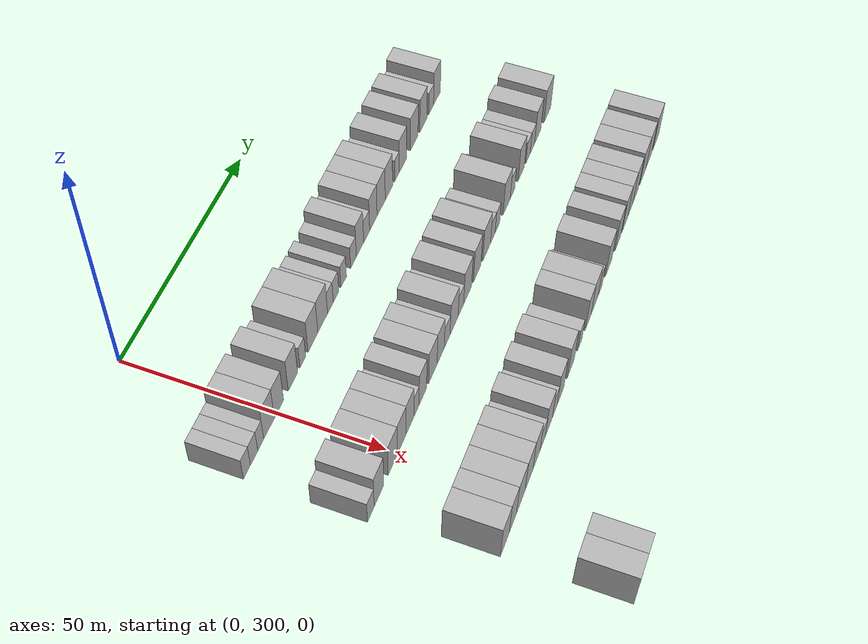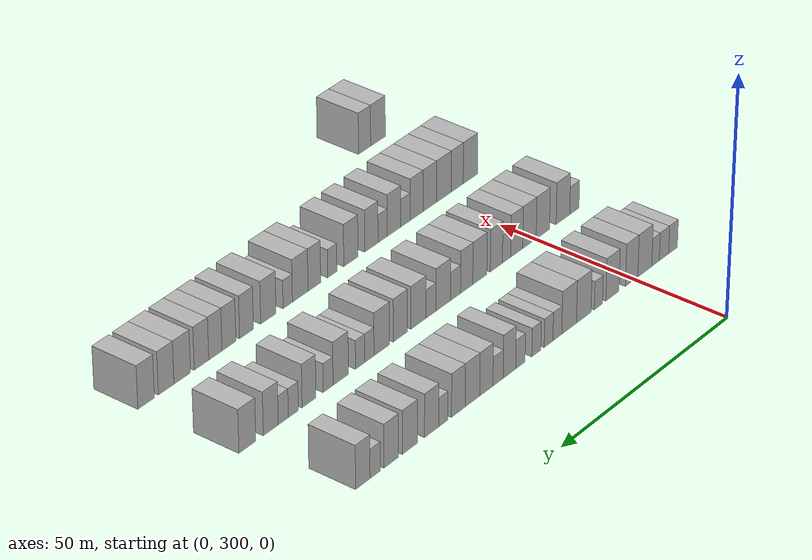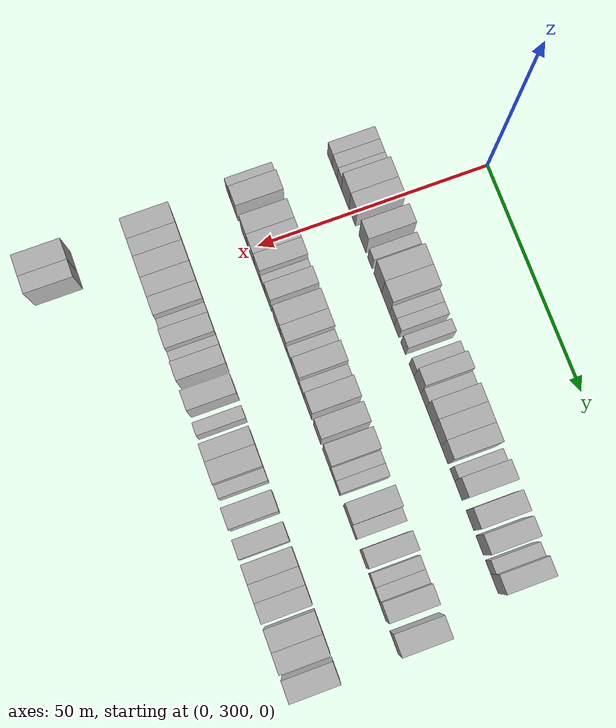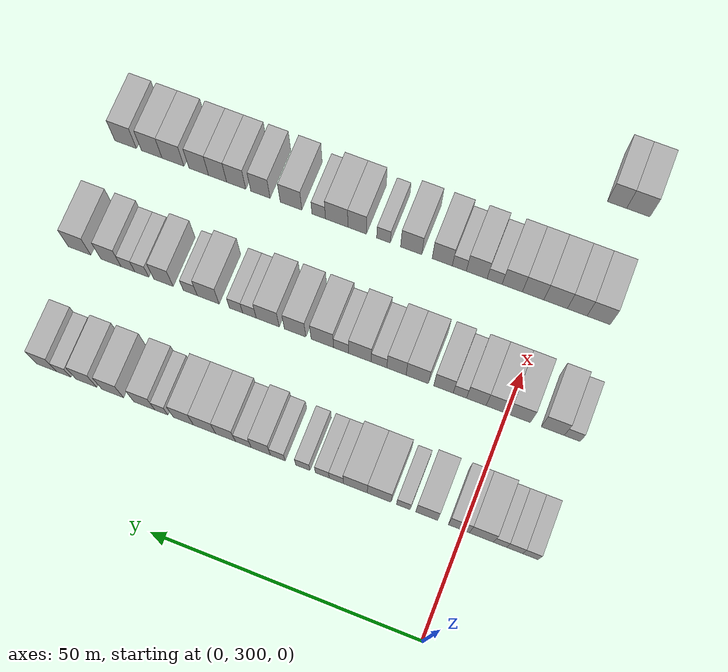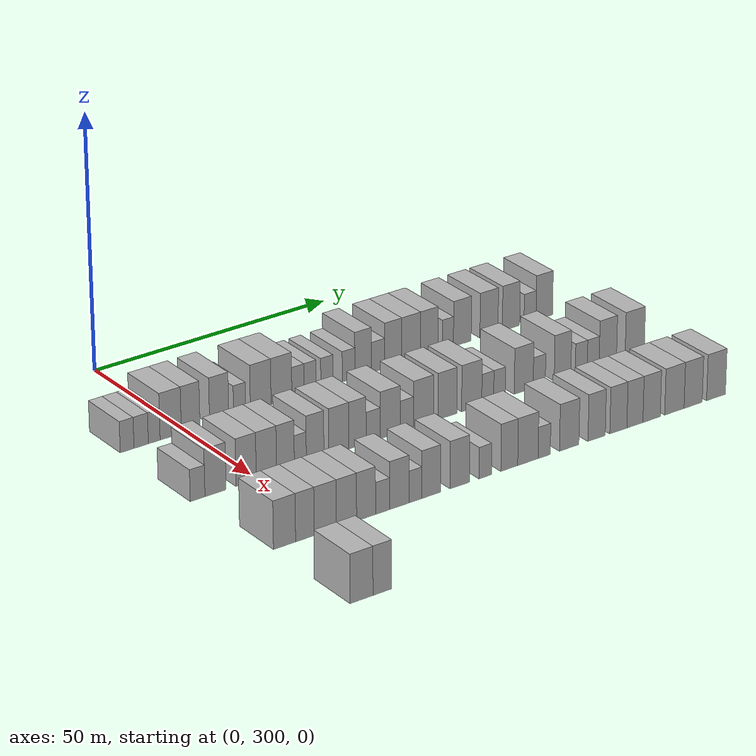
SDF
<sdf version="1.6">
 <world name="default">
  <model name="building_176">
   <static>1</static>
   <pose>25.0000 287.8231 0 0.000000 0.000000 0.000000</pose>
   <link name="link">
    <pose>0 0 3.00 0 0 0</pose>
    <collision name="collision"><geometry><box><size>10.0000 2.7982 6.0000</size></box></geometry></collision>
    <visual name="visual">
     <cast_shadows>0</cast_shadows>
     <geometry><box><size>10.0000 2.7982 6.0000</size></box></geometry>
     <material>
      <script>
       <uri>model://HANNAS_wall/materials/scripts</uri>
       <uri>model://HANNAS_wall/materials/textures</uri>
       <name>vrc/HANNAS_wall</name>
      </script>
     </material>
    </visual>
   </link>
  </model>
  <model name="building_177">
   <static>1</static>
   <pose>25.0000 290.6865 0 0.000000 0.000000 0.000000</pose>
   <link name="link">
    <pose>0 0 3.00 0 0 0</pose>
    <collision name="collision"><geometry><box><size>10.0000 2.9284 6.0000</size></box></geometry></collision>
    <visual name="visual">
     <cast_shadows>0</cast_shadows>
     <geometry><box><size>10.0000 2.9284 6.0000</size></box></geometry>
     <material>
      <script>
       <uri>model://HANNAS_wall/materials/scripts</uri>
       <uri>model://HANNAS_wall/materials/textures</uri>
       <name>vrc/HANNAS_wall</name>
      </script>
     </material>
    </visual>
   </link>
  </model>
  <model name="building_178">
   <static>1</static>
   <pose>25.0000 293.3516 0 0.000000 0.000000 0.000000</pose>
   <link name="link">
    <pose>0 0 3.00 0 0 0</pose>
    <collision name="collision"><geometry><box><size>10.0000 2.4019 6.0000</size></box></geometry></collision>
    <visual name="visual">
     <cast_shadows>0</cast_shadows>
     <geometry><box><size>10.0000 2.4019 6.0000</size></box></geometry>
     <material>
      <script>
       <uri>model://HANNAS_wall/materials/scripts</uri>
       <uri>model://HANNAS_wall/materials/textures</uri>
       <name>vrc/HANNAS_wall</name>
      </script>
     </material>
    </visual>
   </link>
  </model>
  <model name="building_179">
   <static>1</static>
   <pose>25.0000 296.7458 0 0.000000 0.000000 0.000000</pose>
   <link name="link">
    <pose>0 0 4.50 0 0 0</pose>
    <collision name="collision"><geometry><box><size>10.0000 4.3865 9.0000</size></box></geometry></collision>
    <visual name="visual">
     <cast_shadows>0</cast_shadows>
     <geometry><box><size>10.0000 4.3865 9.0000</size></box></geometry>
     <material>
      <script>
       <uri>model://HANNAS_wall/materials/scripts</uri>
       <uri>model://HANNAS_wall/materials/textures</uri>
       <name>vrc/HANNAS_wall</name>
      </script>
     </material>
    </visual>
   </link>
  </model>
  <model name="building_180">
   <static>1</static>
   <pose>25.0000 300.8703 0 0.000000 0.000000 0.000000</pose>
   <link name="link">
    <pose>0 0 4.50 0 0 0</pose>
    <collision name="collision"><geometry><box><size>10.0000 3.8624 9.0000</size></box></geometry></collision>
    <visual name="visual">
     <cast_shadows>0</cast_shadows>
     <geometry><box><size>10.0000 3.8624 9.0000</size></box></geometry>
     <material>
      <script>
       <uri>model://HANNAS_wall/materials/scripts</uri>
       <uri>model://HANNAS_wall/materials/textures</uri>
       <name>vrc/HANNAS_wall</name>
      </script>
     </material>
    </visual>
   </link>
  </model>
  <model name="building_181">
   <static>1</static>
   <pose>25.0000 306.8148 0 0.000000 0.000000 0.000000</pose>
   <link name="link">
    <pose>0 0 4.50 0 0 0</pose>
    <collision name="collision"><geometry><box><size>10.0000 4.0267 9.0000</size></box></geometry></collision>
    <visual name="visual">
     <cast_shadows>0</cast_shadows>
     <geometry><box><size>10.0000 4.0267 9.0000</size></box></geometry>
     <material>
      <script>
       <uri>model://HANNAS_wall/materials/scripts</uri>
       <uri>model://HANNAS_wall/materials/textures</uri>
       <name>vrc/HANNAS_wall</name>
      </script>
     </material>
    </visual>
   </link>
  </model>
  <model name="building_182">
   <static>1</static>
   <pose>25.0000 311.0975 0 0.000000 0.000000 0.000000</pose>
   <link name="link">
    <pose>0 0 3.00 0 0 0</pose>
    <collision name="collision"><geometry><box><size>10.0000 2.5386 6.0000</size></box></geometry></collision>
    <visual name="visual">
     <cast_shadows>0</cast_shadows>
     <geometry><box><size>10.0000 2.5386 6.0000</size></box></geometry>
     <material>
      <script>
       <uri>model://HANNAS_wall/materials/scripts</uri>
       <uri>model://HANNAS_wall/materials/textures</uri>
       <name>vrc/HANNAS_wall</name>
      </script>
     </material>
    </visual>
   </link>
  </model>
  <model name="building_183">
   <static>1</static>
   <pose>25.0000 315.5703 0 0.000000 0.000000 0.000000</pose>
   <link name="link">
    <pose>0 0 4.50 0 0 0</pose>
    <collision name="collision"><geometry><box><size>10.0000 4.4071 9.0000</size></box></geometry></collision>
    <visual name="visual">
     <cast_shadows>0</cast_shadows>
     <geometry><box><size>10.0000 4.4071 9.0000</size></box></geometry>
     <material>
      <script>
       <uri>model://HANNAS_wall/materials/scripts</uri>
       <uri>model://HANNAS_wall/materials/textures</uri>
       <name>vrc/HANNAS_wall</name>
      </script>
     </material>
    </visual>
   </link>
  </model>
  <model name="building_184">
   <static>1</static>
   <pose>25.0000 319.9927 0 0.000000 0.000000 0.000000</pose>
   <link name="link">
    <pose>0 0 4.50 0 0 0</pose>
    <collision name="collision"><geometry><box><size>10.0000 4.4377 9.0000</size></box></geometry></collision>
    <visual name="visual">
     <cast_shadows>0</cast_shadows>
     <geometry><box><size>10.0000 4.4377 9.0000</size></box></geometry>
     <material>
      <script>
       <uri>model://HANNAS_wall/materials/scripts</uri>
       <uri>model://HANNAS_wall/materials/textures</uri>
       <name>vrc/HANNAS_wall</name>
      </script>
     </material>
    </visual>
   </link>
  </model>
  <model name="building_185">
   <static>1</static>
   <pose>25.0000 323.5327 0 0.000000 0.000000 0.000000</pose>
   <link name="link">
    <pose>0 0 3.00 0 0 0</pose>
    <collision name="collision"><geometry><box><size>10.0000 2.6423 6.0000</size></box></geometry></collision>
    <visual name="visual">
     <cast_shadows>0</cast_shadows>
     <geometry><box><size>10.0000 2.6423 6.0000</size></box></geometry>
     <material>
      <script>
       <uri>model://HANNAS_wall/materials/scripts</uri>
       <uri>model://HANNAS_wall/materials/textures</uri>
       <name>vrc/HANNAS_wall</name>
      </script>
     </material>
    </visual>
   </link>
  </model>
  <model name="building_186">
   <static>1</static>
   <pose>25.0000 326.1540 0 0.000000 0.000000 0.000000</pose>
   <link name="link">
    <pose>0 0 3.00 0 0 0</pose>
    <collision name="collision"><geometry><box><size>10.0000 2.6001 6.0000</size></box></geometry></collision>
    <visual name="visual">
     <cast_shadows>0</cast_shadows>
     <geometry><box><size>10.0000 2.6001 6.0000</size></box></geometry>
     <material>
      <script>
       <uri>model://HANNAS_wall/materials/scripts</uri>
       <uri>model://HANNAS_wall/materials/textures</uri>
       <name>vrc/HANNAS_wall</name>
      </script>
     </material>
    </visual>
   </link>
  </model>
  <model name="building_187">
   <static>1</static>
   <pose>25.0000 329.7825 0 0.000000 0.000000 0.000000</pose>
   <link name="link">
    <pose>0 0 3.00 0 0 0</pose>
    <collision name="collision"><geometry><box><size>10.0000 2.6569 6.0000</size></box></geometry></collision>
    <visual name="visual">
     <cast_shadows>0</cast_shadows>
     <geometry><box><size>10.0000 2.6569 6.0000</size></box></geometry>
     <material>
      <script>
       <uri>model://HANNAS_wall/materials/scripts</uri>
       <uri>model://HANNAS_wall/materials/textures</uri>
       <name>vrc/HANNAS_wall</name>
      </script>
     </material>
    </visual>
   </link>
  </model>
  <model name="building_188">
   <static>1</static>
   <pose>25.0000 334.4904 0 0.000000 0.000000 0.000000</pose>
   <link name="link">
    <pose>0 0 3.00 0 0 0</pose>
    <collision name="collision"><geometry><box><size>10.0000 2.7588 6.0000</size></box></geometry></collision>
    <visual name="visual">
     <cast_shadows>0</cast_shadows>
     <geometry><box><size>10.0000 2.7588 6.0000</size></box></geometry>
     <material>
      <script>
       <uri>model://HANNAS_wall/materials/scripts</uri>
       <uri>model://HANNAS_wall/materials/textures</uri>
       <name>vrc/HANNAS_wall</name>
      </script>
     </material>
    </visual>
   </link>
  </model>
  <model name="building_189">
   <static>1</static>
   <pose>25.0000 337.6771 0 0.000000 0.000000 0.000000</pose>
   <link name="link">
    <pose>0 0 4.50 0 0 0</pose>
    <collision name="collision"><geometry><box><size>10.0000 3.6146 9.0000</size></box></geometry></collision>
    <visual name="visual">
     <cast_shadows>0</cast_shadows>
     <geometry><box><size>10.0000 3.6146 9.0000</size></box></geometry>
     <material>
      <script>
       <uri>model://HANNAS_wall/materials/scripts</uri>
       <uri>model://HANNAS_wall/materials/textures</uri>
       <name>vrc/HANNAS_wall</name>
      </script>
     </material>
    </visual>
   </link>
  </model>
  <model name="building_190">
   <static>1</static>
   <pose>25.0000 340.9827 0 0.000000 0.000000 0.000000</pose>
   <link name="link">
    <pose>0 0 3.00 0 0 0</pose>
    <collision name="collision"><geometry><box><size>10.0000 2.9967 6.0000</size></box></geometry></collision>
    <visual name="visual">
     <cast_shadows>0</cast_shadows>
     <geometry><box><size>10.0000 2.9967 6.0000</size></box></geometry>
     <material>
      <script>
       <uri>model://HANNAS_wall/materials/scripts</uri>
       <uri>model://HANNAS_wall/materials/textures</uri>
       <name>vrc/HANNAS_wall</name>
      </script>
     </material>
    </visual>
   </link>
  </model>
  <model name="building_191">
   <static>1</static>
   <pose>25.0000 344.3663 0 0.000000 0.000000 0.000000</pose>
   <link name="link">
    <pose>0 0 4.50 0 0 0</pose>
    <collision name="collision"><geometry><box><size>10.0000 3.7704 9.0000</size></box></geometry></collision>
    <visual name="visual">
     <cast_shadows>0</cast_shadows>
     <geometry><box><size>10.0000 3.7704 9.0000</size></box></geometry>
     <material>
      <script>
       <uri>model://HANNAS_wall/materials/scripts</uri>
       <uri>model://HANNAS_wall/materials/textures</uri>
       <name>vrc/HANNAS_wall</name>
      </script>
     </material>
    </visual>
   </link>
  </model>
  <model name="building_192">
   <static>1</static>
   <pose>25.0000 348.3481 0 0.000000 0.000000 0.000000</pose>
   <link name="link">
    <pose>0 0 4.50 0 0 0</pose>
    <collision name="collision"><geometry><box><size>10.0000 4.1932 9.0000</size></box></geometry></collision>
    <visual name="visual">
     <cast_shadows>0</cast_shadows>
     <geometry><box><size>10.0000 4.1932 9.0000</size></box></geometry>
     <material>
      <script>
       <uri>model://HANNAS_wall/materials/scripts</uri>
       <uri>model://HANNAS_wall/materials/textures</uri>
       <name>vrc/HANNAS_wall</name>
      </script>
     </material>
    </visual>
   </link>
  </model>
  <model name="building_193">
   <static>1</static>
   <pose>25.0000 352.3891 0 0.000000 0.000000 0.000000</pose>
   <link name="link">
    <pose>0 0 4.50 0 0 0</pose>
    <collision name="collision"><geometry><box><size>10.0000 3.8887 9.0000</size></box></geometry></collision>
    <visual name="visual">
     <cast_shadows>0</cast_shadows>
     <geometry><box><size>10.0000 3.8887 9.0000</size></box></geometry>
     <material>
      <script>
       <uri>model://HANNAS_wall/materials/scripts</uri>
       <uri>model://HANNAS_wall/materials/textures</uri>
       <name>vrc/HANNAS_wall</name>
      </script>
     </material>
    </visual>
   </link>
  </model>
  <model name="building_194">
   <static>1</static>
   <pose>25.0000 356.5926 0 0.000000 0.000000 0.000000</pose>
   <link name="link">
    <pose>0 0 3.00 0 0 0</pose>
    <collision name="collision"><geometry><box><size>10.0000 2.5184 6.0000</size></box></geometry></collision>
    <visual name="visual">
     <cast_shadows>0</cast_shadows>
     <geometry><box><size>10.0000 2.5184 6.0000</size></box></geometry>
     <material>
      <script>
       <uri>model://HANNAS_wall/materials/scripts</uri>
       <uri>model://HANNAS_wall/materials/textures</uri>
       <name>vrc/HANNAS_wall</name>
      </script>
     </material>
    </visual>
   </link>
  </model>
  <model name="building_195">
   <static>1</static>
   <pose>25.0000 359.8625 0 0.000000 0.000000 0.000000</pose>
   <link name="link">
    <pose>0 0 4.50 0 0 0</pose>
    <collision name="collision"><geometry><box><size>10.0000 4.0215 9.0000</size></box></geometry></collision>
    <visual name="visual">
     <cast_shadows>0</cast_shadows>
     <geometry><box><size>10.0000 4.0215 9.0000</size></box></geometry>
     <material>
      <script>
       <uri>model://HANNAS_wall/materials/scripts</uri>
       <uri>model://HANNAS_wall/materials/textures</uri>
       <name>vrc/HANNAS_wall</name>
      </script>
     </material>
    </visual>
   </link>
  </model>
  <model name="building_196">
   <static>1</static>
   <pose>25.0000 365.9520 0 0.000000 0.000000 0.000000</pose>
   <link name="link">
    <pose>0 0 4.50 0 0 0</pose>
    <collision name="collision"><geometry><box><size>10.0000 4.1575 9.0000</size></box></geometry></collision>
    <visual name="visual">
     <cast_shadows>0</cast_shadows>
     <geometry><box><size>10.0000 4.1575 9.0000</size></box></geometry>
     <material>
      <script>
       <uri>model://HANNAS_wall/materials/scripts</uri>
       <uri>model://HANNAS_wall/materials/textures</uri>
       <name>vrc/HANNAS_wall</name>
      </script>
     </material>
    </visual>
   </link>
  </model>
  <model name="building_197">
   <static>1</static>
   <pose>25.0000 371.0320 0 0.000000 0.000000 0.000000</pose>
   <link name="link">
    <pose>0 0 4.50 0 0 0</pose>
    <collision name="collision"><geometry><box><size>10.0000 4.0025 9.0000</size></box></geometry></collision>
    <visual name="visual">
     <cast_shadows>0</cast_shadows>
     <geometry><box><size>10.0000 4.0025 9.0000</size></box></geometry>
     <material>
      <script>
       <uri>model://HANNAS_wall/materials/scripts</uri>
       <uri>model://HANNAS_wall/materials/textures</uri>
       <name>vrc/HANNAS_wall</name>
      </script>
     </material>
    </visual>
   </link>
  </model>
  <model name="building_198">
   <static>1</static>
   <pose>25.0000 375.4323 0 0.000000 0.000000 0.000000</pose>
   <link name="link">
    <pose>0 0 3.00 0 0 0</pose>
    <collision name="collision"><geometry><box><size>10.0000 2.7981 6.0000</size></box></geometry></collision>
    <visual name="visual">
     <cast_shadows>0</cast_shadows>
     <geometry><box><size>10.0000 2.7981 6.0000</size></box></geometry>
     <material>
      <script>
       <uri>model://HANNAS_wall/materials/scripts</uri>
       <uri>model://HANNAS_wall/materials/textures</uri>
       <name>vrc/HANNAS_wall</name>
      </script>
     </material>
    </visual>
   </link>
  </model>
  <model name="building_199">
   <static>1</static>
   <pose>25.0000 378.7716 0 0.000000 0.000000 0.000000</pose>
   <link name="link">
    <pose>0 0 4.50 0 0 0</pose>
    <collision name="collision"><geometry><box><size>10.0000 3.8805 9.0000</size></box></geometry></collision>
    <visual name="visual">
     <cast_shadows>0</cast_shadows>
     <geometry><box><size>10.0000 3.8805 9.0000</size></box></geometry>
     <material>
      <script>
       <uri>model://HANNAS_wall/materials/scripts</uri>
       <uri>model://HANNAS_wall/materials/textures</uri>
       <name>vrc/HANNAS_wall</name>
      </script>
     </material>
    </visual>
   </link>
  </model>
  <model name="building_373">
   <static>1</static>
   <pose>47.0000 287.8870 0 0.000000 0.000000 0.000000</pose>
   <link name="link">
    <pose>0 0 3.00 0 0 0</pose>
    <collision name="collision"><geometry><box><size>10.0000 2.9422 6.0000</size></box></geometry></collision>
    <visual name="visual">
     <cast_shadows>0</cast_shadows>
     <geometry><box><size>10.0000 2.9422 6.0000</size></box></geometry>
     <material>
      <script>
       <uri>model://HANNAS_wall/materials/scripts</uri>
       <uri>model://HANNAS_wall/materials/textures</uri>
       <name>vrc/HANNAS_wall</name>
      </script>
     </material>
    </visual>
   </link>
  </model>
  <model name="building_374">
   <static>1</static>
   <pose>47.0000 291.4940 0 0.000000 0.000000 0.000000</pose>
   <link name="link">
    <pose>0 0 4.50 0 0 0</pose>
    <collision name="collision"><geometry><box><size>10.0000 4.2719 9.0000</size></box></geometry></collision>
    <visual name="visual">
     <cast_shadows>0</cast_shadows>
     <geometry><box><size>10.0000 4.2719 9.0000</size></box></geometry>
     <material>
      <script>
       <uri>model://HANNAS_wall/materials/scripts</uri>
       <uri>model://HANNAS_wall/materials/textures</uri>
       <name>vrc/HANNAS_wall</name>
      </script>
     </material>
    </visual>
   </link>
  </model>
  <model name="building_375">
   <static>1</static>
   <pose>47.0000 297.6992 0 0.000000 0.000000 0.000000</pose>
   <link name="link">
    <pose>0 0 4.50 0 0 0</pose>
    <collision name="collision"><geometry><box><size>10.0000 4.1385 9.0000</size></box></geometry></collision>
    <visual name="visual">
     <cast_shadows>0</cast_shadows>
     <geometry><box><size>10.0000 4.1385 9.0000</size></box></geometry>
     <material>
      <script>
       <uri>model://HANNAS_wall/materials/scripts</uri>
       <uri>model://HANNAS_wall/materials/textures</uri>
       <name>vrc/HANNAS_wall</name>
      </script>
     </material>
    </visual>
   </link>
  </model>
  <model name="building_376">
   <static>1</static>
   <pose>47.0000 301.8519 0 0.000000 0.000000 0.000000</pose>
   <link name="link">
    <pose>0 0 4.50 0 0 0</pose>
    <collision name="collision"><geometry><box><size>10.0000 4.1668 9.0000</size></box></geometry></collision>
    <visual name="visual">
     <cast_shadows>0</cast_shadows>
     <geometry><box><size>10.0000 4.1668 9.0000</size></box></geometry>
     <material>
      <script>
       <uri>model://HANNAS_wall/materials/scripts</uri>
       <uri>model://HANNAS_wall/materials/textures</uri>
       <name>vrc/HANNAS_wall</name>
      </script>
     </material>
    </visual>
   </link>
  </model>
  <model name="building_377">
   <static>1</static>
   <pose>47.0000 305.7711 0 0.000000 0.000000 0.000000</pose>
   <link name="link">
    <pose>0 0 4.50 0 0 0</pose>
    <collision name="collision"><geometry><box><size>10.0000 3.6717 9.0000</size></box></geometry></collision>
    <visual name="visual">
     <cast_shadows>0</cast_shadows>
     <geometry><box><size>10.0000 3.6717 9.0000</size></box></geometry>
     <material>
      <script>
       <uri>model://HANNAS_wall/materials/scripts</uri>
       <uri>model://HANNAS_wall/materials/textures</uri>
       <name>vrc/HANNAS_wall</name>
      </script>
     </material>
    </visual>
   </link>
  </model>
  <model name="building_378">
   <static>1</static>
   <pose>47.0000 308.8495 0 0.000000 0.000000 0.000000</pose>
   <link name="link">
    <pose>0 0 3.00 0 0 0</pose>
    <collision name="collision"><geometry><box><size>10.0000 2.4850 6.0000</size></box></geometry></collision>
    <visual name="visual">
     <cast_shadows>0</cast_shadows>
     <geometry><box><size>10.0000 2.4850 6.0000</size></box></geometry>
     <material>
      <script>
       <uri>model://HANNAS_wall/materials/scripts</uri>
       <uri>model://HANNAS_wall/materials/textures</uri>
       <name>vrc/HANNAS_wall</name>
      </script>
     </material>
    </visual>
   </link>
  </model>
  <model name="building_379">
   <static>1</static>
   <pose>47.0000 311.9329 0 0.000000 0.000000 0.000000</pose>
   <link name="link">
    <pose>0 0 4.50 0 0 0</pose>
    <collision name="collision"><geometry><box><size>10.0000 3.6818 9.0000</size></box></geometry></collision>
    <visual name="visual">
     <cast_shadows>0</cast_shadows>
     <geometry><box><size>10.0000 3.6818 9.0000</size></box></geometry>
     <material>
      <script>
       <uri>model://HANNAS_wall/materials/scripts</uri>
       <uri>model://HANNAS_wall/materials/textures</uri>
       <name>vrc/HANNAS_wall</name>
      </script>
     </material>
    </visual>
   </link>
  </model>
  <model name="building_380">
   <static>1</static>
   <pose>47.0000 316.8904 0 0.000000 0.000000 0.000000</pose>
   <link name="link">
    <pose>0 0 4.50 0 0 0</pose>
    <collision name="collision"><geometry><box><size>10.0000 4.2331 9.0000</size></box></geometry></collision>
    <visual name="visual">
     <cast_shadows>0</cast_shadows>
     <geometry><box><size>10.0000 4.2331 9.0000</size></box></geometry>
     <material>
      <script>
       <uri>model://HANNAS_wall/materials/scripts</uri>
       <uri>model://HANNAS_wall/materials/textures</uri>
       <name>vrc/HANNAS_wall</name>
      </script>
     </material>
    </visual>
   </link>
  </model>
  <model name="building_381">
   <static>1</static>
   <pose>47.0000 320.8299 0 0.000000 0.000000 0.000000</pose>
   <link name="link">
    <pose>0 0 4.50 0 0 0</pose>
    <collision name="collision"><geometry><box><size>10.0000 3.6458 9.0000</size></box></geometry></collision>
    <visual name="visual">
     <cast_shadows>0</cast_shadows>
     <geometry><box><size>10.0000 3.6458 9.0000</size></box></geometry>
     <material>
      <script>
       <uri>model://HANNAS_wall/materials/scripts</uri>
       <uri>model://HANNAS_wall/materials/textures</uri>
       <name>vrc/HANNAS_wall</name>
      </script>
     </material>
    </visual>
   </link>
  </model>
  <model name="building_382">
   <static>1</static>
   <pose>47.0000 324.1428 0 0.000000 0.000000 0.000000</pose>
   <link name="link">
    <pose>0 0 3.00 0 0 0</pose>
    <collision name="collision"><geometry><box><size>10.0000 2.9800 6.0000</size></box></geometry></collision>
    <visual name="visual">
     <cast_shadows>0</cast_shadows>
     <geometry><box><size>10.0000 2.9800 6.0000</size></box></geometry>
     <material>
      <script>
       <uri>model://HANNAS_wall/materials/scripts</uri>
       <uri>model://HANNAS_wall/materials/textures</uri>
       <name>vrc/HANNAS_wall</name>
      </script>
     </material>
    </visual>
   </link>
  </model>
  <model name="building_383">
   <static>1</static>
   <pose>47.0000 327.7665 0 0.000000 0.000000 0.000000</pose>
   <link name="link">
    <pose>0 0 4.50 0 0 0</pose>
    <collision name="collision"><geometry><box><size>10.0000 4.2675 9.0000</size></box></geometry></collision>
    <visual name="visual">
     <cast_shadows>0</cast_shadows>
     <geometry><box><size>10.0000 4.2675 9.0000</size></box></geometry>
     <material>
      <script>
       <uri>model://HANNAS_wall/materials/scripts</uri>
       <uri>model://HANNAS_wall/materials/textures</uri>
       <name>vrc/HANNAS_wall</name>
      </script>
     </material>
    </visual>
   </link>
  </model>
  <model name="building_384">
   <static>1</static>
   <pose>47.0000 331.3437 0 0.000000 0.000000 0.000000</pose>
   <link name="link">
    <pose>0 0 3.00 0 0 0</pose>
    <collision name="collision"><geometry><box><size>10.0000 2.8869 6.0000</size></box></geometry></collision>
    <visual name="visual">
     <cast_shadows>0</cast_shadows>
     <geometry><box><size>10.0000 2.8869 6.0000</size></box></geometry>
     <material>
      <script>
       <uri>model://HANNAS_wall/materials/scripts</uri>
       <uri>model://HANNAS_wall/materials/textures</uri>
       <name>vrc/HANNAS_wall</name>
      </script>
     </material>
    </visual>
   </link>
  </model>
  <model name="building_385">
   <static>1</static>
   <pose>47.0000 334.9485 0 0.000000 0.000000 0.000000</pose>
   <link name="link">
    <pose>0 0 4.50 0 0 0</pose>
    <collision name="collision"><geometry><box><size>10.0000 4.3227 9.0000</size></box></geometry></collision>
    <visual name="visual">
     <cast_shadows>0</cast_shadows>
     <geometry><box><size>10.0000 4.3227 9.0000</size></box></geometry>
     <material>
      <script>
       <uri>model://HANNAS_wall/materials/scripts</uri>
       <uri>model://HANNAS_wall/materials/textures</uri>
       <name>vrc/HANNAS_wall</name>
      </script>
     </material>
    </visual>
   </link>
  </model>
  <model name="building_386">
   <static>1</static>
   <pose>47.0000 340.1760 0 0.000000 0.000000 0.000000</pose>
   <link name="link">
    <pose>0 0 4.50 0 0 0</pose>
    <collision name="collision"><geometry><box><size>10.0000 4.1323 9.0000</size></box></geometry></collision>
    <visual name="visual">
     <cast_shadows>0</cast_shadows>
     <geometry><box><size>10.0000 4.1323 9.0000</size></box></geometry>
     <material>
      <script>
       <uri>model://HANNAS_wall/materials/scripts</uri>
       <uri>model://HANNAS_wall/materials/textures</uri>
       <name>vrc/HANNAS_wall</name>
      </script>
     </material>
    </visual>
   </link>
  </model>
  <model name="building_387">
   <static>1</static>
   <pose>47.0000 345.4609 0 0.000000 0.000000 0.000000</pose>
   <link name="link">
    <pose>0 0 4.50 0 0 0</pose>
    <collision name="collision"><geometry><box><size>10.0000 4.4375 9.0000</size></box></geometry></collision>
    <visual name="visual">
     <cast_shadows>0</cast_shadows>
     <geometry><box><size>10.0000 4.4375 9.0000</size></box></geometry>
     <material>
      <script>
       <uri>model://HANNAS_wall/materials/scripts</uri>
       <uri>model://HANNAS_wall/materials/textures</uri>
       <name>vrc/HANNAS_wall</name>
      </script>
     </material>
    </visual>
   </link>
  </model>
  <model name="building_388">
   <static>1</static>
   <pose>47.0000 348.9980 0 0.000000 0.000000 0.000000</pose>
   <link name="link">
    <pose>0 0 3.00 0 0 0</pose>
    <collision name="collision"><geometry><box><size>10.0000 2.6366 6.0000</size></box></geometry></collision>
    <visual name="visual">
     <cast_shadows>0</cast_shadows>
     <geometry><box><size>10.0000 2.6366 6.0000</size></box></geometry>
     <material>
      <script>
       <uri>model://HANNAS_wall/materials/scripts</uri>
       <uri>model://HANNAS_wall/materials/textures</uri>
       <name>vrc/HANNAS_wall</name>
      </script>
     </material>
    </visual>
   </link>
  </model>
  <model name="building_389">
   <static>1</static>
   <pose>47.0000 351.6044 0 0.000000 0.000000 0.000000</pose>
   <link name="link">
    <pose>0 0 3.00 0 0 0</pose>
    <collision name="collision"><geometry><box><size>10.0000 2.5762 6.0000</size></box></geometry></collision>
    <visual name="visual">
     <cast_shadows>0</cast_shadows>
     <geometry><box><size>10.0000 2.5762 6.0000</size></box></geometry>
     <material>
      <script>
       <uri>model://HANNAS_wall/materials/scripts</uri>
       <uri>model://HANNAS_wall/materials/textures</uri>
       <name>vrc/HANNAS_wall</name>
      </script>
     </material>
    </visual>
   </link>
  </model>
  <model name="building_390">
   <static>1</static>
   <pose>47.0000 357.0188 0 0.000000 0.000000 0.000000</pose>
   <link name="link">
    <pose>0 0 4.50 0 0 0</pose>
    <collision name="collision"><geometry><box><size>10.0000 4.2527 9.0000</size></box></geometry></collision>
    <visual name="visual">
     <cast_shadows>0</cast_shadows>
     <geometry><box><size>10.0000 4.2527 9.0000</size></box></geometry>
     <material>
      <script>
       <uri>model://HANNAS_wall/materials/scripts</uri>
       <uri>model://HANNAS_wall/materials/textures</uri>
       <name>vrc/HANNAS_wall</name>
      </script>
     </material>
    </visual>
   </link>
  </model>
  <model name="building_391">
   <static>1</static>
   <pose>47.0000 360.5086 0 0.000000 0.000000 0.000000</pose>
   <link name="link">
    <pose>0 0 3.00 0 0 0</pose>
    <collision name="collision"><geometry><box><size>10.0000 2.7269 6.0000</size></box></geometry></collision>
    <visual name="visual">
     <cast_shadows>0</cast_shadows>
     <geometry><box><size>10.0000 2.7269 6.0000</size></box></geometry>
     <material>
      <script>
       <uri>model://HANNAS_wall/materials/scripts</uri>
       <uri>model://HANNAS_wall/materials/textures</uri>
       <name>vrc/HANNAS_wall</name>
      </script>
     </material>
    </visual>
   </link>
  </model>
  <model name="building_392">
   <static>1</static>
   <pose>47.0000 365.7690 0 0.000000 0.000000 0.000000</pose>
   <link name="link">
    <pose>0 0 4.50 0 0 0</pose>
    <collision name="collision"><geometry><box><size>10.0000 3.7939 9.0000</size></box></geometry></collision>
    <visual name="visual">
     <cast_shadows>0</cast_shadows>
     <geometry><box><size>10.0000 3.7939 9.0000</size></box></geometry>
     <material>
      <script>
       <uri>model://HANNAS_wall/materials/scripts</uri>
       <uri>model://HANNAS_wall/materials/textures</uri>
       <name>vrc/HANNAS_wall</name>
      </script>
     </material>
    </visual>
   </link>
  </model>
  <model name="building_393">
   <static>1</static>
   <pose>47.0000 370.0315 0 0.000000 0.000000 0.000000</pose>
   <link name="link">
    <pose>0 0 3.00 0 0 0</pose>
    <collision name="collision"><geometry><box><size>10.0000 2.7310 6.0000</size></box></geometry></collision>
    <visual name="visual">
     <cast_shadows>0</cast_shadows>
     <geometry><box><size>10.0000 2.7310 6.0000</size></box></geometry>
     <material>
      <script>
       <uri>model://HANNAS_wall/materials/scripts</uri>
       <uri>model://HANNAS_wall/materials/textures</uri>
       <name>vrc/HANNAS_wall</name>
      </script>
     </material>
    </visual>
   </link>
  </model>
  <model name="building_394">
   <static>1</static>
   <pose>47.0000 372.7591 0 0.000000 0.000000 0.000000</pose>
   <link name="link">
    <pose>0 0 3.00 0 0 0</pose>
    <collision name="collision"><geometry><box><size>10.0000 2.7242 6.0000</size></box></geometry></collision>
    <visual name="visual">
     <cast_shadows>0</cast_shadows>
     <geometry><box><size>10.0000 2.7242 6.0000</size></box></geometry>
     <material>
      <script>
       <uri>model://HANNAS_wall/materials/scripts</uri>
       <uri>model://HANNAS_wall/materials/textures</uri>
       <name>vrc/HANNAS_wall</name>
      </script>
     </material>
    </visual>
   </link>
  </model>
  <model name="building_395">
   <static>1</static>
   <pose>47.0000 376.1276 0 0.000000 0.000000 0.000000</pose>
   <link name="link">
    <pose>0 0 4.50 0 0 0</pose>
    <collision name="collision"><geometry><box><size>10.0000 4.0128 9.0000</size></box></geometry></collision>
    <visual name="visual">
     <cast_shadows>0</cast_shadows>
     <geometry><box><size>10.0000 4.0128 9.0000</size></box></geometry>
     <material>
      <script>
       <uri>model://HANNAS_wall/materials/scripts</uri>
       <uri>model://HANNAS_wall/materials/textures</uri>
       <name>vrc/HANNAS_wall</name>
      </script>
     </material>
    </visual>
   </link>
  </model>
  <model name="building_396">
   <static>1</static>
   <pose>47.0000 382.3708 0 0.000000 0.000000 0.000000</pose>
   <link name="link">
    <pose>0 0 4.50 0 0 0</pose>
    <collision name="collision"><geometry><box><size>10.0000 4.4737 9.0000</size></box></geometry></collision>
    <visual name="visual">
     <cast_shadows>0</cast_shadows>
     <geometry><box><size>10.0000 4.4737 9.0000</size></box></geometry>
     <material>
      <script>
       <uri>model://HANNAS_wall/materials/scripts</uri>
       <uri>model://HANNAS_wall/materials/textures</uri>
       <name>vrc/HANNAS_wall</name>
      </script>
     </material>
    </visual>
   </link>
  </model>
  <model name="building_558">
   <static>1</static>
   <pose>69.0000 290.5109 0 0.000000 0.000000 0.000000</pose>
   <link name="link">
    <pose>0 0 4.50 0 0 0</pose>
    <collision name="collision"><geometry><box><size>10.0000 4.3935 9.0000</size></box></geometry></collision>
    <visual name="visual">
     <cast_shadows>0</cast_shadows>
     <geometry><box><size>10.0000 4.3935 9.0000</size></box></geometry>
     <material>
      <script>
       <uri>model://HANNAS_wall/materials/scripts</uri>
       <uri>model://HANNAS_wall/materials/textures</uri>
       <name>vrc/HANNAS_wall</name>
      </script>
     </material>
    </visual>
   </link>
  </model>
  <model name="building_559">
   <static>1</static>
   <pose>69.0000 294.5745 0 0.000000 0.000000 0.000000</pose>
   <link name="link">
    <pose>0 0 4.50 0 0 0</pose>
    <collision name="collision"><geometry><box><size>10.0000 3.7336 9.0000</size></box></geometry></collision>
    <visual name="visual">
     <cast_shadows>0</cast_shadows>
     <geometry><box><size>10.0000 3.7336 9.0000</size></box></geometry>
     <material>
      <script>
       <uri>model://HANNAS_wall/materials/scripts</uri>
       <uri>model://HANNAS_wall/materials/textures</uri>
       <name>vrc/HANNAS_wall</name>
      </script>
     </material>
    </visual>
   </link>
  </model>
  <model name="building_560">
   <static>1</static>
   <pose>69.0000 298.6731 0 0.000000 0.000000 0.000000</pose>
   <link name="link">
    <pose>0 0 4.50 0 0 0</pose>
    <collision name="collision"><geometry><box><size>10.0000 4.4636 9.0000</size></box></geometry></collision>
    <visual name="visual">
     <cast_shadows>0</cast_shadows>
     <geometry><box><size>10.0000 4.4636 9.0000</size></box></geometry>
     <material>
      <script>
       <uri>model://HANNAS_wall/materials/scripts</uri>
       <uri>model://HANNAS_wall/materials/textures</uri>
       <name>vrc/HANNAS_wall</name>
      </script>
     </material>
    </visual>
   </link>
  </model>
  <model name="building_561">
   <static>1</static>
   <pose>69.0000 302.9583 0 0.000000 0.000000 0.000000</pose>
   <link name="link">
    <pose>0 0 4.50 0 0 0</pose>
    <collision name="collision"><geometry><box><size>10.0000 4.1068 9.0000</size></box></geometry></collision>
    <visual name="visual">
     <cast_shadows>0</cast_shadows>
     <geometry><box><size>10.0000 4.1068 9.0000</size></box></geometry>
     <material>
      <script>
       <uri>model://HANNAS_wall/materials/scripts</uri>
       <uri>model://HANNAS_wall/materials/textures</uri>
       <name>vrc/HANNAS_wall</name>
      </script>
     </material>
    </visual>
   </link>
  </model>
  <model name="building_562">
   <static>1</static>
   <pose>69.0000 306.9485 0 0.000000 0.000000 0.000000</pose>
   <link name="link">
    <pose>0 0 4.50 0 0 0</pose>
    <collision name="collision"><geometry><box><size>10.0000 3.8735 9.0000</size></box></geometry></collision>
    <visual name="visual">
     <cast_shadows>0</cast_shadows>
     <geometry><box><size>10.0000 3.8735 9.0000</size></box></geometry>
     <material>
      <script>
       <uri>model://HANNAS_wall/materials/scripts</uri>
       <uri>model://HANNAS_wall/materials/textures</uri>
       <name>vrc/HANNAS_wall</name>
      </script>
     </material>
    </visual>
   </link>
  </model>
  <model name="building_563">
   <static>1</static>
   <pose>69.0000 310.3223 0 0.000000 0.000000 0.000000</pose>
   <link name="link">
    <pose>0 0 3.00 0 0 0</pose>
    <collision name="collision"><geometry><box><size>10.0000 2.8739 6.0000</size></box></geometry></collision>
    <visual name="visual">
     <cast_shadows>0</cast_shadows>
     <geometry><box><size>10.0000 2.8739 6.0000</size></box></geometry>
     <material>
      <script>
       <uri>model://HANNAS_wall/materials/scripts</uri>
       <uri>model://HANNAS_wall/materials/textures</uri>
       <name>vrc/HANNAS_wall</name>
      </script>
     </material>
    </visual>
   </link>
  </model>
  <model name="building_564">
   <static>1</static>
   <pose>69.0000 313.7559 0 0.000000 0.000000 0.000000</pose>
   <link name="link">
    <pose>0 0 4.50 0 0 0</pose>
    <collision name="collision"><geometry><box><size>10.0000 3.9933 9.0000</size></box></geometry></collision>
    <visual name="visual">
     <cast_shadows>0</cast_shadows>
     <geometry><box><size>10.0000 3.9933 9.0000</size></box></geometry>
     <material>
      <script>
       <uri>model://HANNAS_wall/materials/scripts</uri>
       <uri>model://HANNAS_wall/materials/textures</uri>
       <name>vrc/HANNAS_wall</name>
      </script>
     </material>
    </visual>
   </link>
  </model>
  <model name="building_565">
   <static>1</static>
   <pose>69.0000 317.1041 0 0.000000 0.000000 0.000000</pose>
   <link name="link">
    <pose>0 0 3.00 0 0 0</pose>
    <collision name="collision"><geometry><box><size>10.0000 2.7032 6.0000</size></box></geometry></collision>
    <visual name="visual">
     <cast_shadows>0</cast_shadows>
     <geometry><box><size>10.0000 2.7032 6.0000</size></box></geometry>
     <material>
      <script>
       <uri>model://HANNAS_wall/materials/scripts</uri>
       <uri>model://HANNAS_wall/materials/textures</uri>
       <name>vrc/HANNAS_wall</name>
      </script>
     </material>
    </visual>
   </link>
  </model>
  <model name="building_566">
   <static>1</static>
   <pose>69.0000 320.4025 0 0.000000 0.000000 0.000000</pose>
   <link name="link">
    <pose>0 0 4.50 0 0 0</pose>
    <collision name="collision"><geometry><box><size>10.0000 3.8935 9.0000</size></box></geometry></collision>
    <visual name="visual">
     <cast_shadows>0</cast_shadows>
     <geometry><box><size>10.0000 3.8935 9.0000</size></box></geometry>
     <material>
      <script>
       <uri>model://HANNAS_wall/materials/scripts</uri>
       <uri>model://HANNAS_wall/materials/textures</uri>
       <name>vrc/HANNAS_wall</name>
      </script>
     </material>
    </visual>
   </link>
  </model>
  <model name="building_567">
   <static>1</static>
   <pose>69.0000 326.4063 0 0.000000 0.000000 0.000000</pose>
   <link name="link">
    <pose>0 0 4.50 0 0 0</pose>
    <collision name="collision"><geometry><box><size>10.0000 4.1142 9.0000</size></box></geometry></collision>
    <visual name="visual">
     <cast_shadows>0</cast_shadows>
     <geometry><box><size>10.0000 4.1142 9.0000</size></box></geometry>
     <material>
      <script>
       <uri>model://HANNAS_wall/materials/scripts</uri>
       <uri>model://HANNAS_wall/materials/textures</uri>
       <name>vrc/HANNAS_wall</name>
      </script>
     </material>
    </visual>
   </link>
  </model>
  <model name="building_568">
   <static>1</static>
   <pose>69.0000 331.7907 0 0.000000 0.000000 0.000000</pose>
   <link name="link">
    <pose>0 0 3.00 0 0 0</pose>
    <collision name="collision"><geometry><box><size>10.0000 2.6546 6.0000</size></box></geometry></collision>
    <visual name="visual">
     <cast_shadows>0</cast_shadows>
     <geometry><box><size>10.0000 2.6546 6.0000</size></box></geometry>
     <material>
      <script>
       <uri>model://HANNAS_wall/materials/scripts</uri>
       <uri>model://HANNAS_wall/materials/textures</uri>
       <name>vrc/HANNAS_wall</name>
      </script>
     </material>
    </visual>
   </link>
  </model>
  <model name="building_569">
   <static>1</static>
   <pose>69.0000 336.9359 0 0.000000 0.000000 0.000000</pose>
   <link name="link">
    <pose>0 0 4.50 0 0 0</pose>
    <collision name="collision"><geometry><box><size>10.0000 3.6357 9.0000</size></box></geometry></collision>
    <visual name="visual">
     <cast_shadows>0</cast_shadows>
     <geometry><box><size>10.0000 3.6357 9.0000</size></box></geometry>
     <material>
      <script>
       <uri>model://HANNAS_wall/materials/scripts</uri>
       <uri>model://HANNAS_wall/materials/textures</uri>
       <name>vrc/HANNAS_wall</name>
      </script>
     </material>
    </visual>
   </link>
  </model>
  <model name="building_570">
   <static>1</static>
   <pose>69.0000 340.9515 0 0.000000 0.000000 0.000000</pose>
   <link name="link">
    <pose>0 0 4.50 0 0 0</pose>
    <collision name="collision"><geometry><box><size>10.0000 4.3956 9.0000</size></box></geometry></collision>
    <visual name="visual">
     <cast_shadows>0</cast_shadows>
     <geometry><box><size>10.0000 4.3956 9.0000</size></box></geometry>
     <material>
      <script>
       <uri>model://HANNAS_wall/materials/scripts</uri>
       <uri>model://HANNAS_wall/materials/textures</uri>
       <name>vrc/HANNAS_wall</name>
      </script>
     </material>
    </visual>
   </link>
  </model>
  <model name="building_571">
   <static>1</static>
   <pose>69.0000 344.4756 0 0.000000 0.000000 0.000000</pose>
   <link name="link">
    <pose>0 0 3.00 0 0 0</pose>
    <collision name="collision"><geometry><box><size>10.0000 2.6525 6.0000</size></box></geometry></collision>
    <visual name="visual">
     <cast_shadows>0</cast_shadows>
     <geometry><box><size>10.0000 2.6525 6.0000</size></box></geometry>
     <material>
      <script>
       <uri>model://HANNAS_wall/materials/scripts</uri>
       <uri>model://HANNAS_wall/materials/textures</uri>
       <name>vrc/HANNAS_wall</name>
      </script>
     </material>
    </visual>
   </link>
  </model>
  <model name="building_572">
   <static>1</static>
   <pose>69.0000 349.9321 0 0.000000 0.000000 0.000000</pose>
   <link name="link">
    <pose>0 0 4.50 0 0 0</pose>
    <collision name="collision"><geometry><box><size>10.0000 4.2605 9.0000</size></box></geometry></collision>
    <visual name="visual">
     <cast_shadows>0</cast_shadows>
     <geometry><box><size>10.0000 4.2605 9.0000</size></box></geometry>
     <material>
      <script>
       <uri>model://HANNAS_wall/materials/scripts</uri>
       <uri>model://HANNAS_wall/materials/textures</uri>
       <name>vrc/HANNAS_wall</name>
      </script>
     </material>
    </visual>
   </link>
  </model>
  <model name="building_573">
   <static>1</static>
   <pose>69.0000 355.9798 0 0.000000 0.000000 0.000000</pose>
   <link name="link">
    <pose>0 0 4.50 0 0 0</pose>
    <collision name="collision"><geometry><box><size>10.0000 3.8351 9.0000</size></box></geometry></collision>
    <visual name="visual">
     <cast_shadows>0</cast_shadows>
     <geometry><box><size>10.0000 3.8351 9.0000</size></box></geometry>
     <material>
      <script>
       <uri>model://HANNAS_wall/materials/scripts</uri>
       <uri>model://HANNAS_wall/materials/textures</uri>
       <name>vrc/HANNAS_wall</name>
      </script>
     </material>
    </visual>
   </link>
  </model>
  <model name="building_574">
   <static>1</static>
   <pose>69.0000 360.8031 0 0.000000 0.000000 0.000000</pose>
   <link name="link">
    <pose>0 0 4.50 0 0 0</pose>
    <collision name="collision"><geometry><box><size>10.0000 3.8115 9.0000</size></box></geometry></collision>
    <visual name="visual">
     <cast_shadows>0</cast_shadows>
     <geometry><box><size>10.0000 3.8115 9.0000</size></box></geometry>
     <material>
      <script>
       <uri>model://HANNAS_wall/materials/scripts</uri>
       <uri>model://HANNAS_wall/materials/textures</uri>
       <name>vrc/HANNAS_wall</name>
      </script>
     </material>
    </visual>
   </link>
  </model>
  <model name="building_575">
   <static>1</static>
   <pose>69.0000 364.5090 0 0.000000 0.000000 0.000000</pose>
   <link name="link">
    <pose>0 0 4.50 0 0 0</pose>
    <collision name="collision"><geometry><box><size>10.0000 3.6004 9.0000</size></box></geometry></collision>
    <visual name="visual">
     <cast_shadows>0</cast_shadows>
     <geometry><box><size>10.0000 3.6004 9.0000</size></box></geometry>
     <material>
      <script>
       <uri>model://HANNAS_wall/materials/scripts</uri>
       <uri>model://HANNAS_wall/materials/textures</uri>
       <name>vrc/HANNAS_wall</name>
      </script>
     </material>
    </visual>
   </link>
  </model>
  <model name="building_576">
   <static>1</static>
   <pose>69.0000 368.2699 0 0.000000 0.000000 0.000000</pose>
   <link name="link">
    <pose>0 0 4.50 0 0 0</pose>
    <collision name="collision"><geometry><box><size>10.0000 3.9213 9.0000</size></box></geometry></collision>
    <visual name="visual">
     <cast_shadows>0</cast_shadows>
     <geometry><box><size>10.0000 3.9213 9.0000</size></box></geometry>
     <material>
      <script>
       <uri>model://HANNAS_wall/materials/scripts</uri>
       <uri>model://HANNAS_wall/materials/textures</uri>
       <name>vrc/HANNAS_wall</name>
      </script>
     </material>
    </visual>
   </link>
  </model>
  <model name="building_577">
   <static>1</static>
   <pose>69.0000 373.4399 0 0.000000 0.000000 0.000000</pose>
   <link name="link">
    <pose>0 0 4.50 0 0 0</pose>
    <collision name="collision"><geometry><box><size>10.0000 4.4188 9.0000</size></box></geometry></collision>
    <visual name="visual">
     <cast_shadows>0</cast_shadows>
     <geometry><box><size>10.0000 4.4188 9.0000</size></box></geometry>
     <material>
      <script>
       <uri>model://HANNAS_wall/materials/scripts</uri>
       <uri>model://HANNAS_wall/materials/textures</uri>
       <name>vrc/HANNAS_wall</name>
      </script>
     </material>
    </visual>
   </link>
  </model>
  <model name="building_578">
   <static>1</static>
   <pose>69.0000 377.7271 0 0.000000 0.000000 0.000000</pose>
   <link name="link">
    <pose>0 0 4.50 0 0 0</pose>
    <collision name="collision"><geometry><box><size>10.0000 4.1555 9.0000</size></box></geometry></collision>
    <visual name="visual">
     <cast_shadows>0</cast_shadows>
     <geometry><box><size>10.0000 4.1555 9.0000</size></box></geometry>
     <material>
      <script>
       <uri>model://HANNAS_wall/materials/scripts</uri>
       <uri>model://HANNAS_wall/materials/textures</uri>
       <name>vrc/HANNAS_wall</name>
      </script>
     </material>
    </visual>
   </link>
  </model>
  <model name="building_579">
   <static>1</static>
   <pose>69.0000 382.9885 0 0.000000 0.000000 0.000000</pose>
   <link name="link">
    <pose>0 0 4.50 0 0 0</pose>
    <collision name="collision"><geometry><box><size>10.0000 4.3673 9.0000</size></box></geometry></collision>
    <visual name="visual">
     <cast_shadows>0</cast_shadows>
     <geometry><box><size>10.0000 4.3673 9.0000</size></box></geometry>
     <material>
      <script>
       <uri>model://HANNAS_wall/materials/scripts</uri>
       <uri>model://HANNAS_wall/materials/textures</uri>
       <name>vrc/HANNAS_wall</name>
      </script>
     </material>
    </visual>
   </link>
  </model>
  <model name="building_747">
   <static>1</static>
   <pose>91.0000 290.3582 0 0.000000 0.000000 0.000000</pose>
   <link name="link">
    <pose>0 0 4.50 0 0 0</pose>
    <collision name="collision"><geometry><box><size>10.0000 4.4953 9.0000</size></box></geometry></collision>
    <visual name="visual">
     <cast_shadows>0</cast_shadows>
     <geometry><box><size>10.0000 4.4953 9.0000</size></box></geometry>
     <material>
      <script>
       <uri>model://HANNAS_wall/materials/scripts</uri>
       <uri>model://HANNAS_wall/materials/textures</uri>
       <name>vrc/HANNAS_wall</name>
      </script>
     </material>
    </visual>
   </link>
  </model>
  <model name="building_748">
   <static>1</static>
   <pose>91.0000 294.4617 0 0.000000 0.000000 0.000000</pose>
   <link name="link">
    <pose>0 0 4.50 0 0 0</pose>
    <collision name="collision"><geometry><box><size>10.0000 3.7116 9.0000</size></box></geometry></collision>
    <visual name="visual">
     <cast_shadows>0</cast_shadows>
     <geometry><box><size>10.0000 3.7116 9.0000</size></box></geometry>
     <material>
      <script>
       <uri>model://HANNAS_wall/materials/scripts</uri>
       <uri>model://HANNAS_wall/materials/textures</uri>
       <name>vrc/HANNAS_wall</name>
      </script>
     </material>
    </visual>
   </link>
  </model>
 </world>
</sdf>
